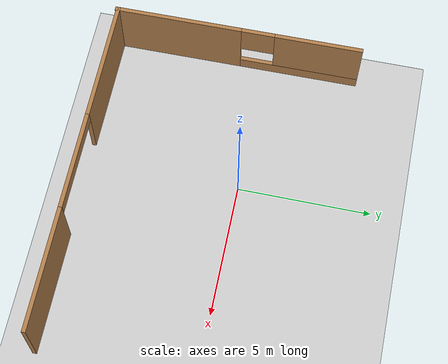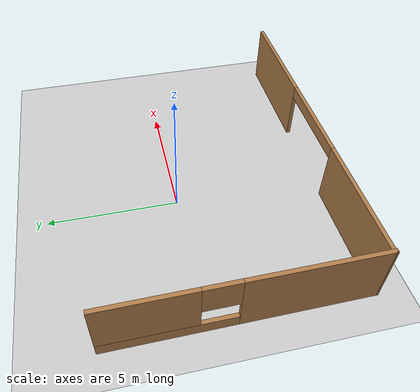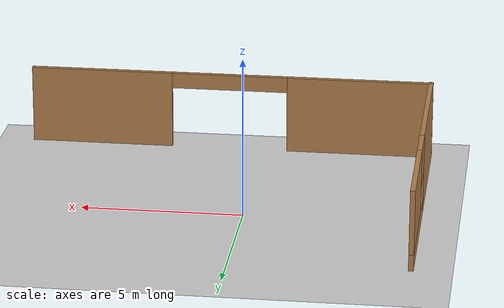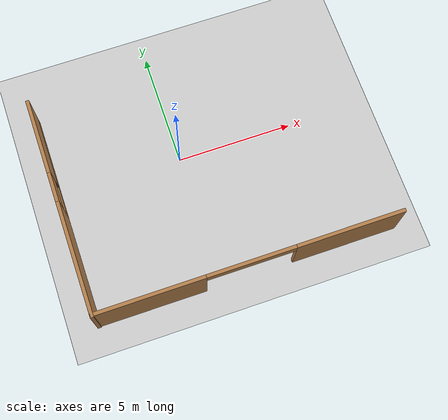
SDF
<sdf version="1.6">
 <world name="default">
  <light name="sun" type="directional">
   <pose>0 0 10 0 -0 0</pose>
   <diffuse>0.8 0.8 0.8 1</diffuse>
   <specular>0.1 0.1 0.1 1</specular>
   <attenuation>
    <range>1000</range>
    <constant>0.9</constant>
    <linear>0.01</linear>
    <quadratic>0.001</quadratic>
   </attenuation>
   <direction>-0.5 0.5 -1</direction>
  </light>
  <model name="ground_plane">
   <static>1</static>
   <link name="link">
    <collision name="collision">
     <geometry><plane><normal>0 0 1</normal><size>100 100</size></plane></geometry>
     <surface><friction><ode><mu>100</mu><mu2>50</mu2></ode></friction></surface>
    </collision>
    <visual name="visual">
     <cast_shadows>0</cast_shadows>
     <geometry><plane><normal>0 0 1</normal><size>100 100</size></plane></geometry>
     <material>
      <script><uri>file://media/materials/scripts/gazebo.material</uri><name>Gazebo/Grey</name></script>
     </material>
    </visual>
   </link>
  </model>
  <gravity>0 0 -9.8</gravity>
  <magnetic_field>6e-06 2.3e-05 -4.2e-05</magnetic_field>
  <atmosphere type="adiabatic"/>
  <physics name="default_physics" default="0" type="ode">
   <max_step_size>0.001</max_step_size>
   <real_time_factor>1</real_time_factor>
   <real_time_update_rate>1000</real_time_update_rate>
  </physics>
  <scene><ambient>0.4 0.4 0.4 1</ambient><background>0.7 0.7 0.7 1</background><shadows>1</shadows></scene>
  <spherical_coordinates>
   <surface_model>EARTH_WGS84</surface_model>
   <latitude_deg>0</latitude_deg>
   <longitude_deg>0</longitude_deg>
   <elevation>0</elevation>
   <heading_deg>0</heading_deg>
  </spherical_coordinates>
  <model name="my_world">
   <pose>1.07939 -1.10429 0 0 -0 0</pose>
   <link name="Wall_1">
    <pose>0.017731 -4.62036 0 0 -0 3.14159</pose>
    <visual name="Wall_1_Visual_0">
     <pose>-4.20684 0 1.25 0 -0 0</pose>
     <geometry><box><size>4.58633 0.15 2.5</size></box></geometry>
     <material>
      <script><uri>file://media/materials/scripts/gazebo.material</uri><name>Gazebo/Wood</name></script>
      <ambient>1 1 1 1</ambient>
     </material>
     <meta><layer>0</layer></meta>
    </visual>
    <collision name="Wall_1_Collision_0">
     <geometry><box><size>4.58633 0.15 2.5</size></box></geometry>
     <pose>-4.20684 0 1.25 0 -0 0</pose>
    </collision>
    <visual name="Wall_1_Visual_1">
     <pose>4.15766 0 1.25 0 -0 0</pose>
     <geometry><box><size>4.68467 0.15 2.5</size></box></geometry>
     <material>
      <script><uri>file://media/materials/scripts/gazebo.material</uri><name>Gazebo/Wood</name></script>
      <ambient>1 1 1 1</ambient>
     </material>
     <meta><layer>0</layer></meta>
    </visual>
    <collision name="Wall_1_Collision_1">
     <geometry><box><size>4.68467 0.15 2.5</size></box></geometry>
     <pose>4.15766 0 1.25 0 -0 0</pose>
    </collision>
    <visual name="Wall_1_Visual_2">
     <pose>-0.049171 0 2.25 0 -0 0</pose>
     <geometry><box><size>3.729 0.15 0.5</size></box></geometry>
     <material>
      <script><uri>file://media/materials/scripts/gazebo.material</uri><name>Gazebo/Wood</name></script>
      <ambient>1 1 1 1</ambient>
     </material>
     <meta><layer>0</layer></meta>
    </visual>
    <collision name="Wall_1_Collision_2">
     <geometry><box><size>3.729 0.15 0.5</size></box></geometry>
     <pose>-0.049171 0 2.25 0 -0 0</pose>
    </collision>
   </link>
   <link name="Wall_2">
    <pose>-6.42486 0 0 0 -0 1.57458</pose>
    <visual name="Wall_2_Visual_0">
     <pose>-2.29675 0 1.25 0 -0 0</pose>
     <geometry><box><size>4.86763 0.15 2.5</size></box></geometry>
     <material>
      <script><uri>file://media/materials/scripts/gazebo.material</uri><name>Gazebo/Wood</name></script>
      <ambient>1 1 1 1</ambient>
     </material>
     <meta><layer>0</layer></meta>
    </visual>
    <collision name="Wall_2_Collision_0">
     <geometry><box><size>4.86763 0.15 2.5</size></box></geometry>
     <pose>-2.29675 0 1.25 0 -0 0</pose>
    </collision>
    <visual name="Wall_2_Visual_1">
     <pose>2.43382 0 0.25 0 -0 0</pose>
     <geometry><box><size>4.59351 0.15 0.5</size></box></geometry>
     <material>
      <script><uri>file://media/materials/scripts/gazebo.material</uri><name>Gazebo/Wood</name></script>
      <ambient>1 1 1 1</ambient>
     </material>
     <meta><layer>0</layer></meta>
    </visual>
    <collision name="Wall_2_Collision_1">
     <geometry><box><size>4.59351 0.15 0.5</size></box></geometry>
     <pose>2.43382 0 0.25 0 -0 0</pose>
    </collision>
    <visual name="Wall_2_Visual_2">
     <pose>3.06996 0 1.5 0 -0 0</pose>
     <geometry><box><size>3.32122 0.15 2</size></box></geometry>
     <material>
      <script><uri>file://media/materials/scripts/gazebo.material</uri><name>Gazebo/Wood</name></script>
      <ambient>1 1 1 1</ambient>
     </material>
     <meta><layer>0</layer></meta>
    </visual>
    <collision name="Wall_2_Collision_2">
     <geometry><box><size>3.32122 0.15 2</size></box></geometry>
     <pose>3.06996 0 1.5 0 -0 0</pose>
    </collision>
    <visual name="Wall_2_Visual_3">
     <pose>0.773206 0 1.9 0 -0 0</pose>
     <geometry><box><size>1.27228 0.15 1.2</size></box></geometry>
     <material>
      <script><uri>file://media/materials/scripts/gazebo.material</uri><name>Gazebo/Wood</name></script>
      <ambient>1 1 1 1</ambient>
     </material>
     <meta><layer>0</layer></meta>
    </visual>
    <collision name="Wall_2_Collision_3">
     <geometry><box><size>1.27228 0.15 1.2</size></box></geometry>
     <pose>0.773206 0 1.9 0 -0 0</pose>
    </collision>
   </link>
   <static>1</static>
  </model>
 </world>
</sdf>
